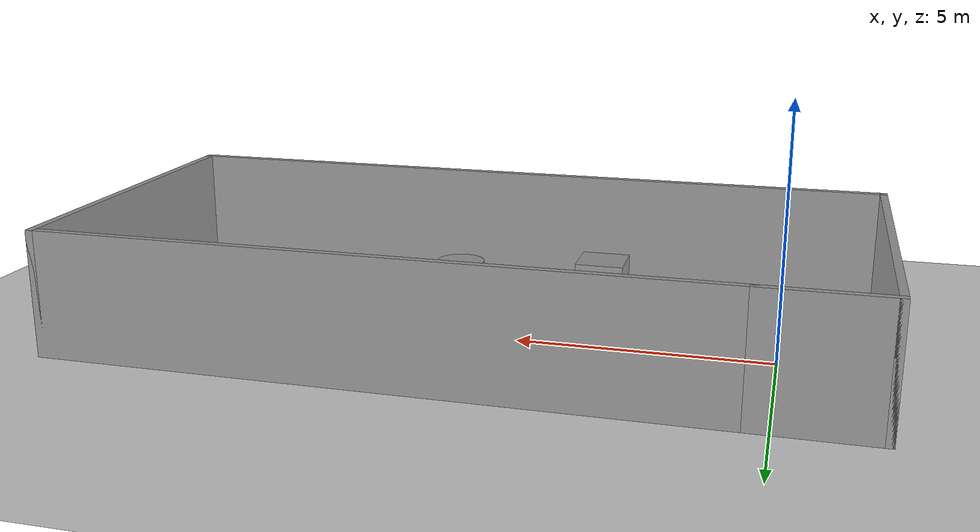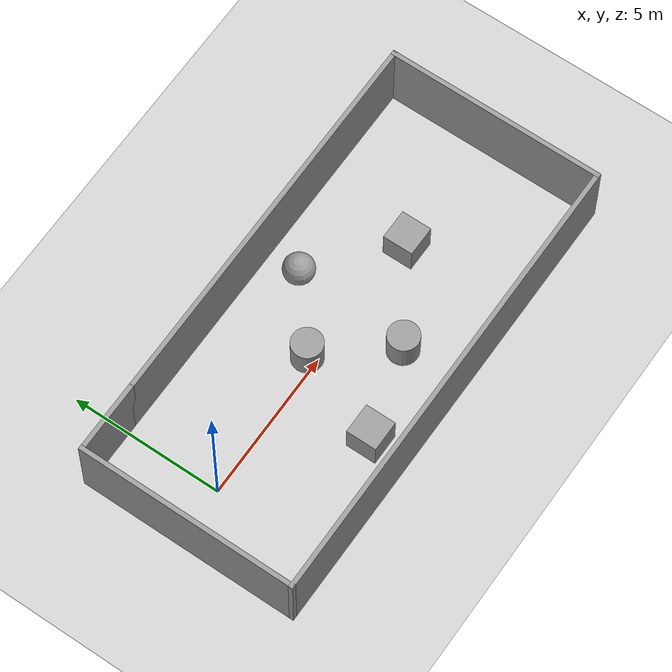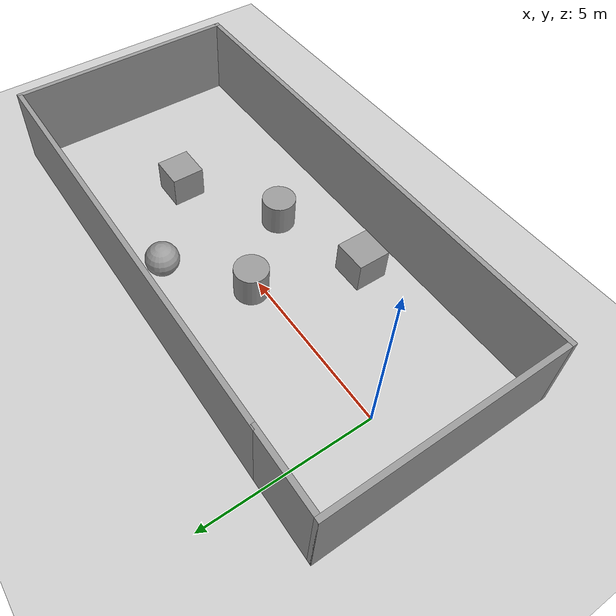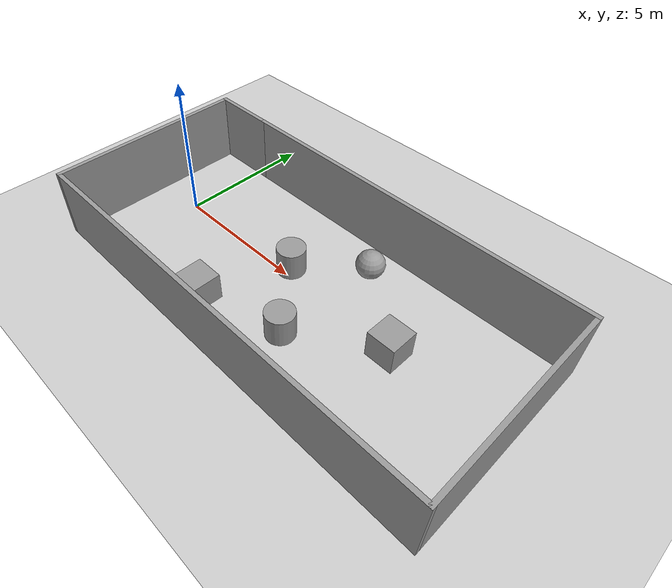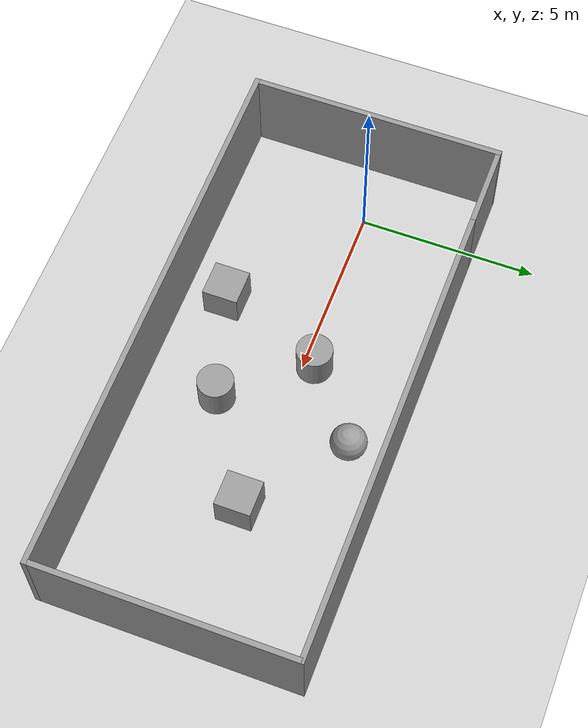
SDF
<sdf version="1.7">
 <world name="default">
  <light name="sun" type="directional">
   <pose>0 0 10 0 -0 0</pose>
   <diffuse>0.8 0.8 0.8 1</diffuse>
   <specular>0.2 0.2 0.2 1</specular>
   <attenuation>
    <range>1000</range>
    <constant>0.9</constant>
    <linear>0.01</linear>
    <quadratic>0.001</quadratic>
   </attenuation>
   <direction>-0.5 0.1 -0.9</direction>
   <spot><inner_angle>0</inner_angle><outer_angle>0</outer_angle><falloff>0</falloff></spot>
  </light>
  <model name="ground_plane">
   <static>1</static>
   <link name="link">
    <collision name="collision">
     <geometry><plane><normal>0 0 1</normal><size>100 100</size></plane></geometry>
     <surface><friction><ode><mu>100</mu><mu2>50</mu2></ode></friction></surface>
    </collision>
    <visual name="visual">
     <cast_shadows>0</cast_shadows>
     <geometry><plane><normal>0 0 1</normal><size>100 100</size></plane></geometry>
     <material>
      <script><uri>file://media/materials/scripts/gazebo.material</uri><name>Gazebo/Grey</name></script>
     </material>
    </visual>
   </link>
  </model>
  <gravity>0 0 -9.8</gravity>
  <magnetic_field>6e-06 2.3e-05 -4.2e-05</magnetic_field>
  <atmosphere type="adiabatic"/>
  <physics type="ode">
   <max_step_size>0.001</max_step_size>
   <real_time_factor>1</real_time_factor>
   <real_time_update_rate>1000</real_time_update_rate>
  </physics>
  <scene><ambient>0.4 0.4 0.4 1</ambient><background>0.7 0.7 0.7 1</background><shadows>1</shadows></scene>
  <spherical_coordinates>
   <surface_model>EARTH_WGS84</surface_model>
   <latitude_deg>0</latitude_deg>
   <longitude_deg>0</longitude_deg>
   <elevation>0</elevation>
   <heading_deg>0</heading_deg>
  </spherical_coordinates>
  <model name="room">
   <pose>5.80897 -0.365072 0 0 -0 0</pose>
   <link name="Wall_10">
    <collision name="Wall_10_Collision">
     <geometry><box><size>2.4 0.15 2.5</size></box></geometry>
     <pose>0 0 1.25 0 -0 0</pose>
    </collision>
    <visual name="Wall_10_Visual">
     <pose>0 0 1.25 0 -0 0</pose>
     <geometry><box><size>2.4 0.15 2.5</size></box></geometry>
     <material>
      <script><uri>file://media/materials/scripts/gazebo.material</uri><name>Gazebo/Grey</name></script>
      <ambient>1 1 1 1</ambient>
     </material>
     <meta><layer>0</layer></meta>
    </visual>
    <pose>-6.55 3.55 0 0 -0 0</pose>
   </link>
   <link name="Wall_6">
    <collision name="Wall_6_Collision">
     <geometry><box><size>13.25 0.15 2.5</size></box></geometry>
     <pose>0 0 1.25 0 -0 0</pose>
    </collision>
    <visual name="Wall_6_Visual">
     <pose>0 0 1.25 0 -0 0</pose>
     <geometry><box><size>13.25 0.15 2.5</size></box></geometry>
     <material>
      <script><uri>file://media/materials/scripts/gazebo.material</uri><name>Gazebo/Grey</name></script>
      <ambient>1 1 1 1</ambient>
     </material>
     <meta><layer>0</layer></meta>
    </visual>
    <pose>1.125 3.55 0 0 -0 0</pose>
   </link>
   <link name="Wall_7">
    <collision name="Wall_7_Collision">
     <geometry><box><size>7.25 0.15 2.5</size></box></geometry>
     <pose>0 0 1.25 0 -0 0</pose>
    </collision>
    <visual name="Wall_7_Visual">
     <pose>0 0 1.25 0 -0 0</pose>
     <geometry><box><size>7.25 0.15 2.5</size></box></geometry>
     <material>
      <script><uri>file://media/materials/scripts/gazebo.material</uri><name>Gazebo/Grey</name></script>
      <ambient>1 1 1 1</ambient>
     </material>
     <meta><layer>0</layer></meta>
    </visual>
    <pose>7.675 -0 0 0 -0 -1.5708</pose>
   </link>
   <link name="Wall_8">
    <collision name="Wall_8_Collision">
     <geometry><box><size>15.5 0.15 2.5</size></box></geometry>
     <pose>0 0 1.25 0 -0 0</pose>
    </collision>
    <visual name="Wall_8_Visual">
     <pose>0 0 1.25 0 -0 0</pose>
     <geometry><box><size>15.5 0.15 2.5</size></box></geometry>
     <material>
      <script><uri>file://media/materials/scripts/gazebo.material</uri><name>Gazebo/Grey</name></script>
      <ambient>1 1 1 1</ambient>
     </material>
     <meta><layer>0</layer></meta>
    </visual>
    <pose>0 -3.55 0 0 -0 3.14159</pose>
   </link>
   <link name="Wall_9">
    <collision name="Wall_9_Collision">
     <geometry><box><size>7.25 0.15 2.5</size></box></geometry>
     <pose>0 0 1.25 0 -0 0</pose>
    </collision>
    <visual name="Wall_9_Visual">
     <pose>0 0 1.25 0 -0 0</pose>
     <geometry><box><size>7.25 0.15 2.5</size></box></geometry>
     <material>
      <script><uri>file://media/materials/scripts/gazebo.material</uri><name>Gazebo/Grey</name></script>
      <ambient>1 1 1 1</ambient>
     </material>
     <meta><layer>0</layer></meta>
    </visual>
    <pose>-7.675 -0 0 0 -0 1.5708</pose>
   </link>
   <static>1</static>
  </model>
  <model name="unit_box">
   <pose>3.76331 -2.67771 0.499995 0 1e-05 0</pose>
   <link name="link">
    <inertial>
     <mass>1</mass>
     <inertia>
      <ixx>0.166667</ixx>
      <ixy>0</ixy>
      <ixz>0</ixz>
      <iyy>0.166667</iyy>
      <iyz>0</iyz>
      <izz>0.166667</izz>
     </inertia>
    </inertial>
    <collision name="collision"><geometry><box><size>1 1 1</size></box></geometry></collision>
    <visual name="visual">
     <geometry><box><size>1 1 1</size></box></geometry>
     <material>
      <script><name>Gazebo/Grey</name><uri>file://media/materials/scripts/gazebo.material</uri></script>
     </material>
    </visual>
   </link>
  </model>
  <model name="unit_sphere">
   <pose>6.90013 2.00852 0.5 0 -0 0</pose>
   <link name="link">
    <inertial>
     <mass>1</mass>
     <inertia><ixx>0.1</ixx><ixy>0</ixy><ixz>0</ixz><iyy>0.1</iyy><iyz>0</iyz><izz>0.1</izz></inertia>
    </inertial>
    <collision name="collision"><geometry><sphere><radius>0.5</radius></sphere></geometry></collision>
    <visual name="visual">
     <geometry><sphere><radius>0.5</radius></sphere></geometry>
     <material>
      <script><name>Gazebo/Grey</name><uri>file://media/materials/scripts/gazebo.material</uri></script>
     </material>
    </visual>
   </link>
  </model>
  <model name="unit_cylinder">
   <pose>6.66233 -1.8288 0.499997 3e-06 4e-06 -0</pose>
   <link name="link">
    <inertial>
     <mass>1</mass>
     <inertia><ixx>0.145833</ixx><ixy>0</ixy><ixz>0</ixz><iyy>0.145833</iyy><iyz>0</iyz><izz>0.125</izz></inertia>
    </inertial>
    <collision name="collision">
     <geometry><cylinder><radius>0.5</radius><length>1</length></cylinder></geometry>
    </collision>
    <visual name="visual">
     <geometry><cylinder><radius>0.5</radius><length>1</length></cylinder></geometry>
     <material>
      <script><name>Gazebo/Grey</name><uri>file://media/materials/scripts/gazebo.material</uri></script>
     </material>
    </visual>
   </link>
  </model>
  <model name="unit_box_0">
   <pose>9.45125 -0.055859 0.499995 -1e-05 -0 -0</pose>
   <link name="link">
    <inertial>
     <mass>1</mass>
     <inertia>
      <ixx>0.166667</ixx>
      <ixy>0</ixy>
      <ixz>0</ixz>
      <iyy>0.166667</iyy>
      <iyz>0</iyz>
      <izz>0.166667</izz>
     </inertia>
    </inertial>
    <collision name="collision"><geometry><box><size>1 1 1</size></box></geometry></collision>
    <visual name="visual">
     <geometry><box><size>1 1 1</size></box></geometry>
     <material>
      <script><name>Gazebo/Grey</name><uri>file://media/materials/scripts/gazebo.material</uri></script>
     </material>
    </visual>
   </link>
  </model>
  <model name="unit_cylinder_0">
   <pose>4.89093 0.310613 0.499998 3e-06 -4e-06 0</pose>
   <link name="link">
    <inertial>
     <mass>1</mass>
     <inertia><ixx>0.145833</ixx><ixy>0</ixy><ixz>0</ixz><iyy>0.145833</iyy><iyz>0</iyz><izz>0.125</izz></inertia>
    </inertial>
    <collision name="collision">
     <geometry><cylinder><radius>0.5</radius><length>1</length></cylinder></geometry>
    </collision>
    <visual name="visual">
     <geometry><cylinder><radius>0.5</radius><length>1</length></cylinder></geometry>
     <material>
      <script><name>Gazebo/Grey</name><uri>file://media/materials/scripts/gazebo.material</uri></script>
     </material>
    </visual>
   </link>
  </model>
 </world>
</sdf>
